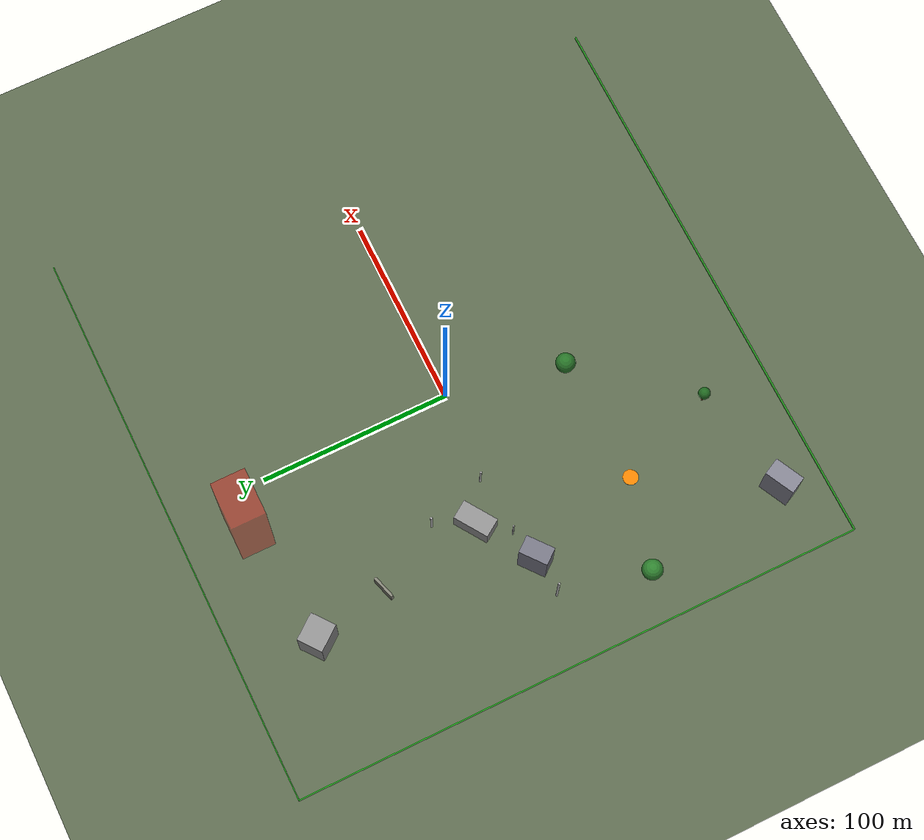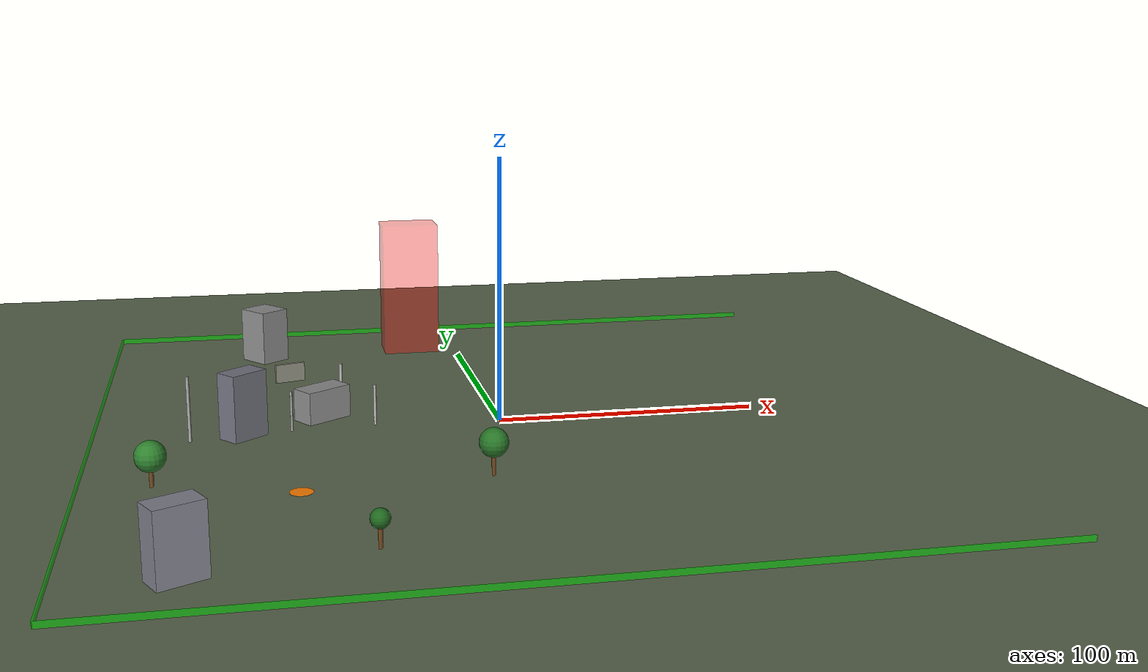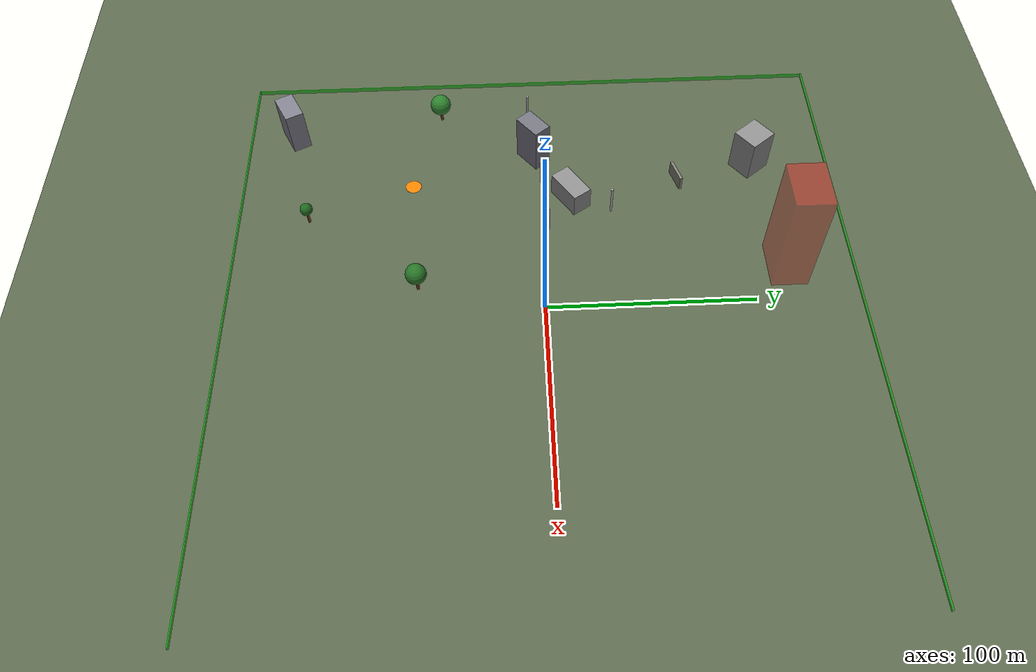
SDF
<sdf version="1.9">
 <world name="training_variant_000">
  <model name="ground_plane">
   <static>true</static>
   <link name="link">
    <collision name="collision">
     <geometry><plane><normal>0 0 1</normal><size>500 500</size></plane></geometry>
     <surface><friction><ode><mu>100</mu><mu2>50</mu2></ode></friction></surface>
    </collision>
    <visual name="visual">
     <geometry><plane><normal>0 0 1</normal><size>500 500</size></plane></geometry>
     <material><ambient>0.35 0.4 0.3 1</ambient><diffuse>0.35 0.4 0.3 1</diffuse></material>
    </visual>
   </link>
  </model>
  <model name="geofence_north">
   <static>true</static>
   <pose>0 150.0 1 0 0 0</pose>
   <link name="link">
    <visual name="visual">
     <geometry><box><size>300.0 0.5 2</size></box></geometry>
     <material>
      <ambient>0 0.8 0 0.6</ambient>
      <diffuse>0 0.8 0 0.6</diffuse>
      <emissive>0 0.2 0 1</emissive>
     </material>
    </visual>
   </link>
  </model>
  <model name="geofence_south">
   <static>true</static>
   <pose>0 -150.0 1 0 0 0</pose>
   <link name="link">
    <visual name="visual">
     <geometry><box><size>300.0 0.5 2</size></box></geometry>
     <material>
      <ambient>0 0.8 0 0.6</ambient>
      <diffuse>0 0.8 0 0.6</diffuse>
      <emissive>0 0.2 0 1</emissive>
     </material>
    </visual>
   </link>
  </model>
  <model name="geofence_west">
   <static>true</static>
   <pose>-150.0 0 1 0 0 0</pose>
   <link name="link">
    <visual name="visual">
     <geometry><box><size>0.5 300.0 2</size></box></geometry>
     <material>
      <ambient>0 0.8 0 0.6</ambient>
      <diffuse>0 0.8 0 0.6</diffuse>
      <emissive>0 0.2 0 1</emissive>
     </material>
    </visual>
   </link>
  </model>
  <model name="nfz_0_volume">
   <static>true</static>
   <pose>-19.688161034699817 116.94310119687587 29.032713608710065 0 0 0</pose>
   <link name="link">
    <visual name="visual">
     <geometry><box><size>24.284736147408772 17.6462369745005 58.06542721742013</size></box></geometry>
     <material><ambient>1 0 0 0.35000000000000003</ambient><diffuse>1 0 0 0.35000000000000003</diffuse></material>
    </visual>
   </link>
  </model>
  <model name="obstacle_pole_1">
   <static>true</static>
   <pose>-78.30127729156195 1.4903429077356236 7.648986097190352 0 0 0.0</pose>
   <link name="link">
    <visual name="visual">
     <geometry>
      <cylinder><radius>0.42657654590558114</radius><length>15.297972194380703</length></cylinder>
     </geometry>
     <material><ambient>0.65 0.65 0.65 1.0</ambient><diffuse>0.65 0.65 0.65 1.0</diffuse></material>
    </visual>
    <collision name="collision">
     <geometry>
      <cylinder><radius>0.42657654590558114</radius><length>15.297972194380703</length></cylinder>
     </geometry>
    </collision>
   </link>
  </model>
  <model name="obstacle_tree_2">
   <static>true</static>
   <pose>-13.70299553258252 -59.842383570645225 0 0 0 0.0</pose>
   <link name="link">
    <visual name="trunk">
     <pose>0 0 4.2585594628849766 0 0 0</pose>
     <geometry>
      <cylinder><radius>0.7148058838767211</radius><length>8.517118925769953</length></cylinder>
     </geometry>
     <material><ambient>0.4 0.25 0.1 1.0</ambient><diffuse>0.4 0.25 0.1 1.0</diffuse></material>
    </visual>
    <visual name="canopy">
     <pose>0 0 11.579503878232378 0 0 0</pose>
     <geometry><sphere><radius>5.103974920770708</radius></sphere></geometry>
     <material><ambient>0.15 0.45 0.15 1.0</ambient><diffuse>0.15 0.45 0.15 1.0</diffuse></material>
    </visual>
    <collision name="collision">
     <pose>0 0 9.362534383655685 0 0 0</pose>
     <geometry><cylinder><radius>5.103974920770708</radius><length>18.72506876731137</length></cylinder></geometry>
    </collision>
   </link>
  </model>
  <model name="obstacle_wall_3">
   <static>true</static>
   <pose>-76.18349207909387 70.51237544416387 3.8336140250149255 0 0 0.2913696602140622</pose>
   <link name="link">
    <visual name="visual">
     <geometry><box><size>12.394889745653352 1.4226143981535024 7.667228050029851</size></box></geometry>
     <material><ambient>0.5 0.5 0.45 1.0</ambient><diffuse>0.5 0.5 0.45 1.0</diffuse></material>
    </visual>
    <collision name="collision">
     <geometry><box><size>12.394889745653352 1.4226143981535024 7.667228050029851</size></box></geometry>
    </collision>
   </link>
  </model>
  <model name="obstacle_pole_5">
   <static>true</static>
   <pose>-57.43299428703072 35.722403428972 7.894000990392291 0 0 0.0</pose>
   <link name="link">
    <visual name="visual">
     <geometry>
      <cylinder><radius>0.576688611608448</radius><length>15.788001980784582</length></cylinder>
     </geometry>
     <material><ambient>0.7 0.7 0.7 1.0</ambient><diffuse>0.7 0.7 0.7 1.0</diffuse></material>
    </visual>
    <collision name="collision">
     <geometry>
      <cylinder><radius>0.576688611608448</radius><length>15.788001980784582</length></cylinder>
     </geometry>
    </collision>
   </link>
  </model>
  <model name="obstacle_tree_6">
   <static>true</static>
   <pose>-57.649790972472246 -115.02146368093823 0 0 0 0.0</pose>
   <link name="link">
    <visual name="trunk">
     <pose>0 0 3.683694826954641 0 0 0</pose>
     <geometry>
      <cylinder><radius>0.7113715508644771</radius><length>7.367389653909282</length></cylinder>
     </geometry>
     <material><ambient>0.4 0.25 0.1 1.0</ambient><diffuse>0.4 0.25 0.1 1.0</diffuse></material>
    </visual>
    <visual name="canopy">
     <pose>0 0 9.249873544489473 0 0 0</pose>
     <geometry><sphere><radius>3.1374731509669864</radius></sphere></geometry>
     <material><ambient>0.12 0.4 0.12 1.0</ambient><diffuse>0.12 0.4 0.12 1.0</diffuse></material>
    </visual>
    <collision name="collision">
     <pose>0 0 6.821167977921627 0 0 0</pose>
     <geometry>
      <cylinder><radius>3.1374731509669864</radius><length>13.642335955843254</length></cylinder>
     </geometry>
    </collision>
   </link>
  </model>
  <model name="obstacle_tree_10">
   <static>true</static>
   <pose>-126.02599215423581 -49.706614321517876 0 0 0 0.0</pose>
   <link name="link">
    <visual name="trunk">
     <pose>0 0 3.687144215892313 0 0 0</pose>
     <geometry>
      <cylinder><radius>0.7528555760569429</radius><length>7.374288431784626</length></cylinder>
     </geometry>
     <material><ambient>0.42 0.27 0.12 1.0</ambient><diffuse>0.42 0.27 0.12 1.0</diffuse></material>
    </visual>
    <visual name="canopy">
     <pose>0 0 10.571088272567867 0 0 0</pose>
     <geometry><sphere><radius>5.327999734638734</radius></sphere></geometry>
     <material><ambient>0.18 0.5 0.18 1.0</ambient><diffuse>0.18 0.5 0.18 1.0</diffuse></material>
    </visual>
    <collision name="collision">
     <pose>0 0 9.015143950531048 0 0 0</pose>
     <geometry>
      <cylinder><radius>5.327999734638734</radius><length>18.030287901062096</length></cylinder>
     </geometry>
    </collision>
   </link>
  </model>
  <model name="obstacle_building_12">
   <static>true</static>
   <pose>-66.13666348149624 16.0186435421476 6.251481415233446 0 0 0.5867032757042107</pose>
   <link name="link">
    <visual name="visual">
     <geometry><box><size>18.974571076886523 10.12966667328659 12.502962830466892</size></box></geometry>
     <material><ambient>0.55 0.55 0.55 1.0</ambient><diffuse>0.55 0.55 0.55 1.0</diffuse></material>
    </visual>
    <collision name="collision">
     <geometry><box><size>18.974571076886523 10.12966667328659 12.502962830466892</size></box></geometry>
    </collision>
   </link>
  </model>
  <model name="obstacle_building_13">
   <static>true</static>
   <pose>-95.84122137252123 -1.7182882240281572 12.477269112907868 0 0 0.6763086437483982</pose>
   <link name="link">
    <visual name="visual">
     <geometry><box><size>15.002395099347876 9.257967993422499 24.954538225815735</size></box></geometry>
     <material><ambient>0.45 0.45 0.5 1.0</ambient><diffuse>0.45 0.45 0.5 1.0</diffuse></material>
    </visual>
    <collision name="collision">
     <geometry><box><size>15.002395099347876 9.257967993422499 24.954538225815735</size></box></geometry>
    </collision>
   </link>
  </model>
  <model name="obstacle_building_17">
   <static>true</static>
   <pose>-85.29082214308025 109.51788893272953 11.44474999321465 0 0 0.6610455602425831</pose>
   <link name="link">
    <visual name="visual">
     <geometry><box><size>13.444684475950478 14.584343347689721 22.8894999864293</size></box></geometry>
     <material><ambient>0.55 0.55 0.55 1.0</ambient><diffuse>0.55 0.55 0.55 1.0</diffuse></material>
    </visual>
    <collision name="collision">
     <geometry><box><size>13.444684475950478 14.584343347689721 22.8894999864293</size></box></geometry>
    </collision>
   </link>
  </model>
  <model name="obstacle_pole_20">
   <static>true</static>
   <pose>-115.08325726769765 -3.8910982181019733 12.23474722648997 0 0 0.0</pose>
   <link name="link">
    <visual name="visual">
     <geometry>
      <cylinder><radius>0.5634028797612121</radius><length>24.46949445297994</length></cylinder>
     </geometry>
     <material><ambient>0.65 0.65 0.65 1.0</ambient><diffuse>0.65 0.65 0.65 1.0</diffuse></material>
    </visual>
    <collision name="collision">
     <geometry>
      <cylinder><radius>0.5634028797612121</radius><length>24.46949445297994</length></cylinder>
     </geometry>
    </collision>
   </link>
  </model>
  <model name="obstacle_building_23">
   <static>true</static>
   <pose>-115.07089875710318 -126.41810077807887 11.646719719465036 0 0 0.46215978512727407</pose>
   <link name="link">
    <visual name="visual">
     <geometry><box><size>16.060243515659398 9.360784522763645 23.293439438930072</size></box></geometry>
     <material><ambient>0.5 0.5 0.55 1.0</ambient><diffuse>0.5 0.5 0.55 1.0</diffuse></material>
    </visual>
    <collision name="collision">
     <geometry><box><size>16.060243515659398 9.360784522763645 23.293439438930072</size></box></geometry>
    </collision>
   </link>
  </model>
  <model name="obstacle_pole_24">
   <static>true</static>
   <pose>-47.132501653800674 3.934701865140937 7.794368834381617 0 0 0.0</pose>
   <link name="link">
    <visual name="visual">
     <geometry>
      <cylinder><radius>0.5123522839645362</radius><length>15.588737668763233</length></cylinder>
     </geometry>
     <material><ambient>0.7 0.7 0.7 1.0</ambient><diffuse>0.7 0.7 0.7 1.0</diffuse></material>
    </visual>
    <collision name="collision">
     <geometry>
      <cylinder><radius>0.5123522839645362</radius><length>15.588737668763233</length></cylinder>
     </geometry>
    </collision>
   </link>
  </model>
  <model name="lz_emergency">
   <static>true</static>
   <pose>-78.02202706336502 -63.865487187890835 0.02 0 0 0</pose>
   <link name="link">
    <visual name="pad">
     <geometry><cylinder><radius>4.0</radius><length>0.04</length></cylinder></geometry>
     <material><ambient>1 0.5 0 1</ambient><diffuse>1 0.5 0 1</diffuse></material>
    </visual>
   </link>
  </model>
 </world>
</sdf>
